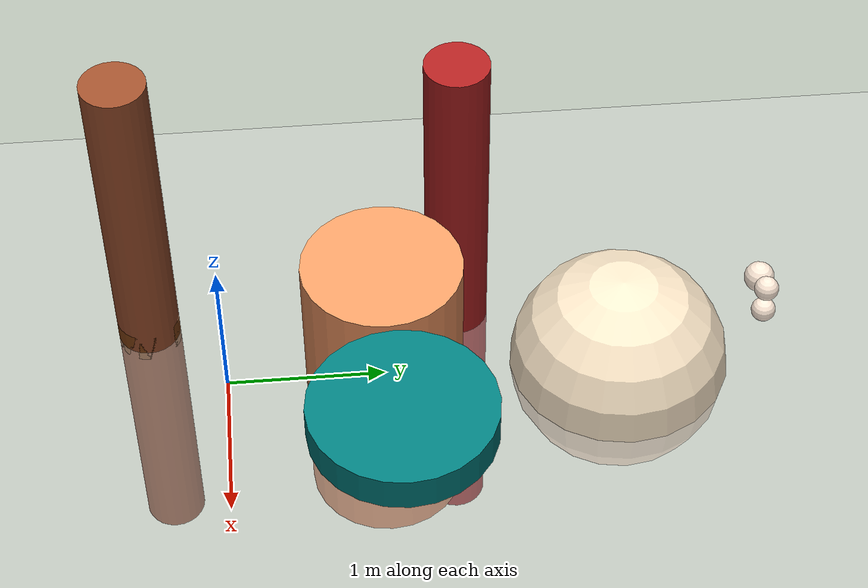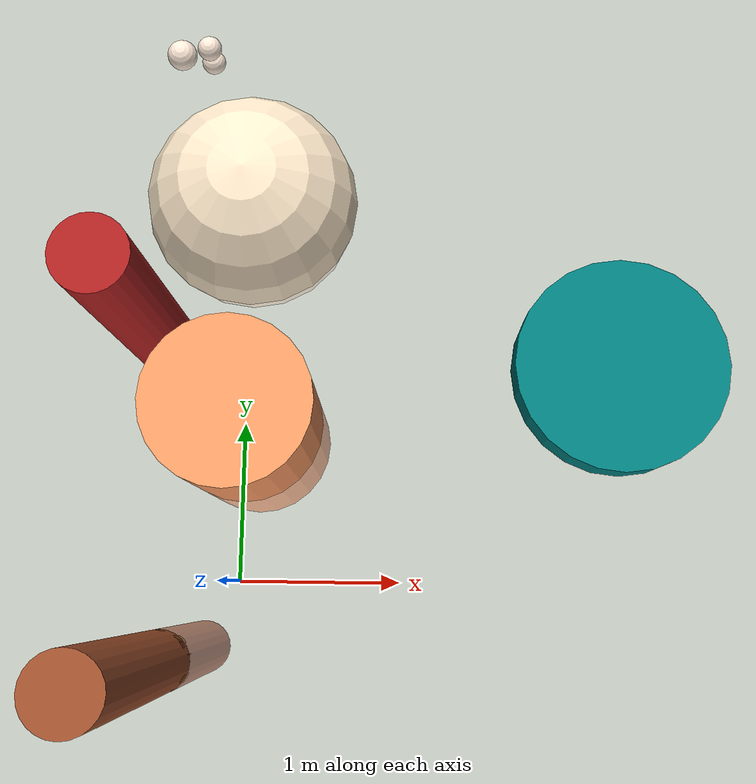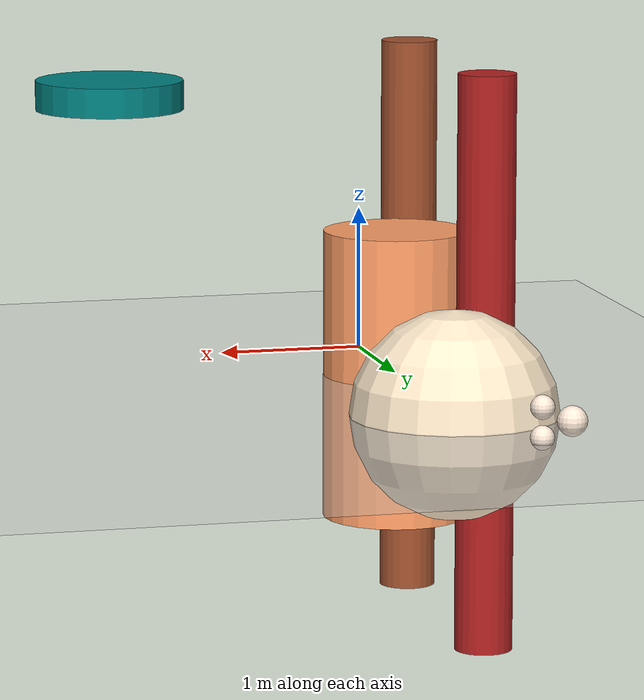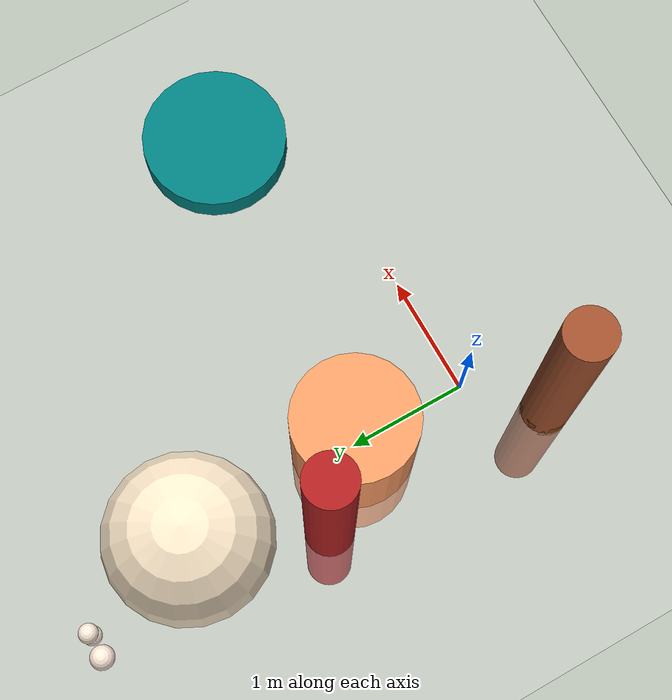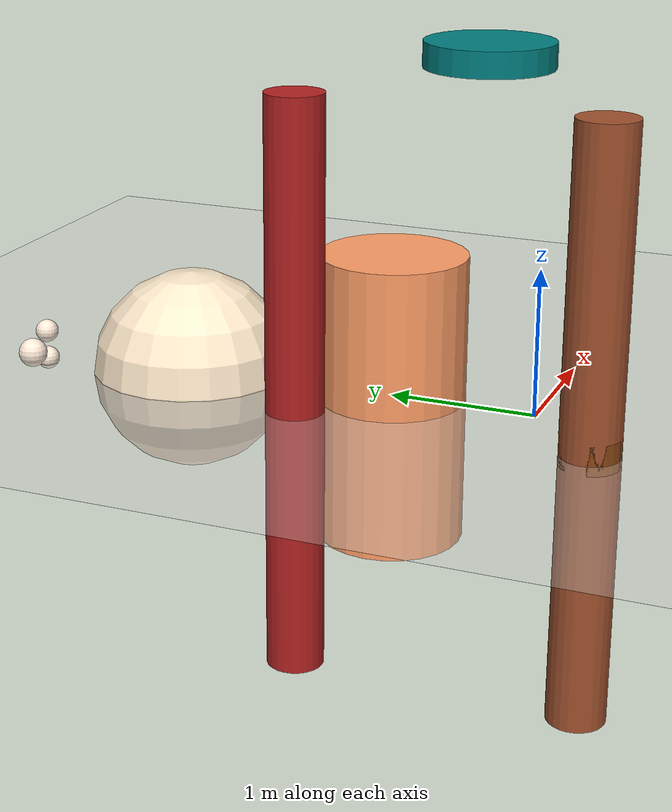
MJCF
<mujoco model="example">
    <size ncon="100" nstack="300"/>
    <option timestep="0.002" iterations="10" tolerance="1e-8" frictionloss="0.0001"
            viscosity="0" integrator="impr" collision="all" cone="pyramidal" worldsize="1000"/>
    <asset>
        <texture name="texplane" type="2d" builtin="checker" width="512" height="512" rgb1=".8 .8 .8" rgb2=".9 .9 .9"/>
        <material name="matplane" texture="texplane" texrepeat="1 1" shininess="1" reflectance="0.01" />
        <material name="egg_material" rgba="1 0.92 0.80 1"/>  <material name="egg_base_material" rgba="1 0.62 0.40 1"/> <material name="target_material" rgba="0 0.5 0.5 1"/>
        <material name="arm_base_material" rgba="0.54 0.27 0.07 1"/>  <material name="arm_upper_material" rgba="0.63 0.32 0.18 1"/>  <material name="arm_lower_material" rgba="0.70 0.13 0.13 1"/>  <material name="finger_material" rgba="1 0.92 0.85 1"/> </asset>
    <worldbody>
        <geom name="floor" pos="0 0 0" material="matplane" type="plane" size="20 20 0.1"/>
        <body name="egg_base_start" pos="0 1 0">
            <geom name="egg_base_start_geom" material="egg_base_material" type="cylinder" size="0.5 1"/>
        </body>
        <body name="egg" pos="0 2.5 0">
            <geom name="egg_geom" material="egg_material" type="sphere" size="0.7"/>
        </body>
        <body name="egg_base_target" pos="2 1 2">
            <geom name="egg_base_target_geom" material="target_material" type="cylinder" size="0.5 0.1"/>
        </body>
        <body name="base" pos="-0.5 -0.5 0.03">
            <geom name="base_geom" material="arm_base_material" type="cylinder" size="0.2 0.1"/>
            <body name="shoulder" pos="0 0 0.1">
                <geom name="shoulder_geom" material="arm_upper_material" type="cylinder" size="0.2 2" axis="0 1 0"/>
                <body name="elbow" pos="0 2 0">
                    <geom name="elbow_geom" material="arm_lower_material" type="cylinder" size="0.2 2" axis="0 1 0"/>
                    <body name="wrist" pos="0 2 0">
                        <geom name="wrist_geom" material="finger_material" type="sphere" size="0.1"/>
                        <body name="finger_left" pos="0.2 0 0.1">
                            <geom name="finger_left_geom" material="finger_material" type="sphere" size="0.08"/>
                        </body>
                        <body name="finger_right" pos="0.2 0 -0.1">
                            <geom name="finger_right_geom" material="finger_material" type="sphere" size="0.08"/>
                        </body>
                    </body>
                </body>
            </body>
        </body>
    </worldbody>
    <actuator>
        <motor name="shoulder_motor" joint="shoulder:joint" gear="100"/>
        <motor name="elbow_motor" joint="elbow:joint" gear="100"/>
        <motor name="wrist_motor" joint="wrist:joint" gear="100"/>
    </actuator>
</mujoco>
